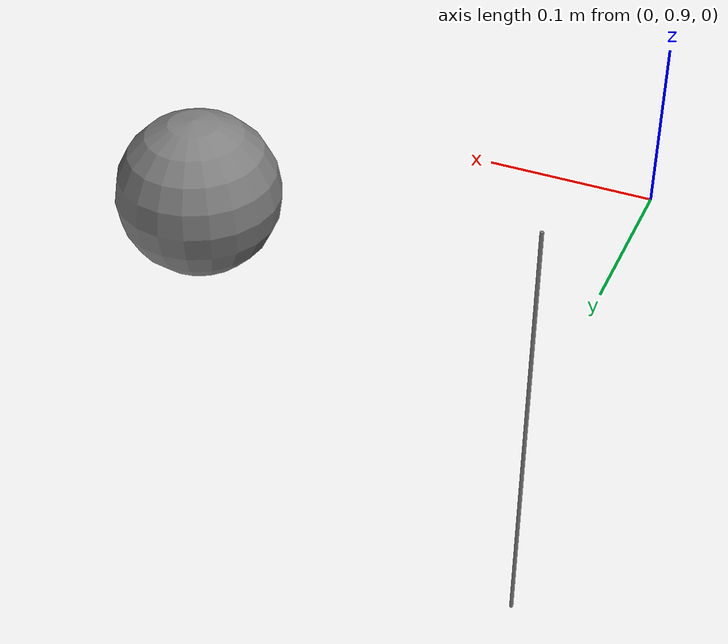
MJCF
<mujoco model="pendulum">
  <option gravity="0 -9.81 0" />

  <worldbody>
    <light diffuse=".5 .5 .5" pos="0 3 3" dir="0 -1 -1"/>

    <body name="pendulum" pos="0 1 0">
      <joint name="hinge" type="hinge" axis="0 0 1" damping="0" frictionloss="0"/>
      <!-- Rod: Length 0.2485, Mass 0. Cylinder size is (radius, half-length) -->
      <geom name="rod" type="cylinder" size="0.001 0.12425" pos="0 0.12425 0" mass="0"/>
      <body name="bob" pos="0.2485 0 0">
        <!-- Bob: Sphere, Diameter 0.1 (radius 0.05), Mass 1.0 -->
        <geom name="bob_geom" type="sphere" size="0.05" mass="1.0"/>
      </body>
    </body>
  </worldbody>
</mujoco>
